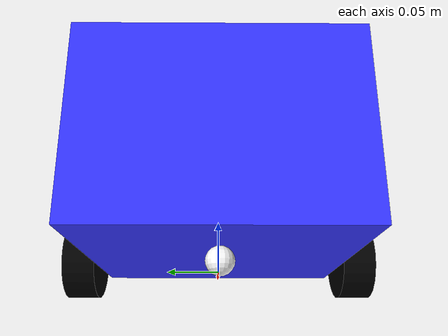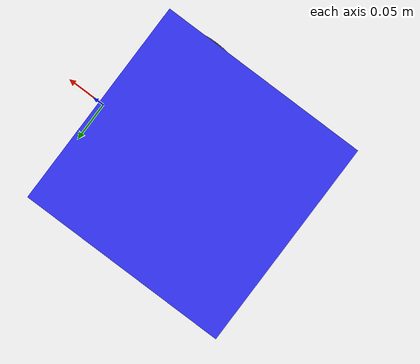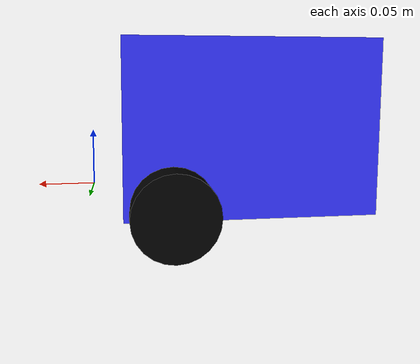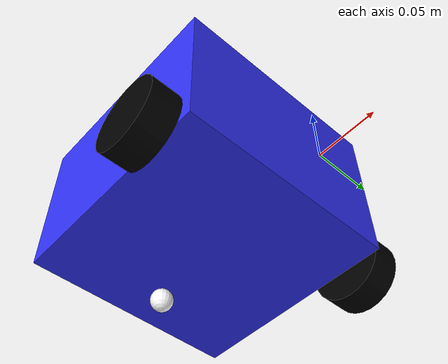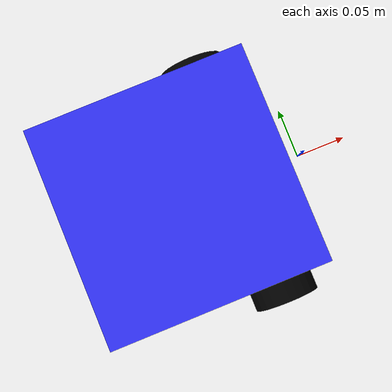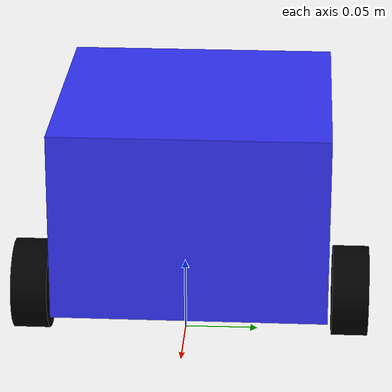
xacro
<?xml version="1.0"?>
<robot xmlns:xacro="http://www.ros.org/wiki/xacro" name="amr_bot">

  <!-- Properties -->
  <xacro:property name="chassis_length" value="0.198"/>
  <xacro:property name="chassis_width" value="0.198"/>
  <xacro:property name="chassis_height" value="0.138"/>
  <xacro:property name="chassis_mass" value="1.0"/>
  <xacro:property name="wheel_radius" value="0.0325"/>
  <xacro:property name="wheel_thickness" value="0.026"/>
  <xacro:property name="wheel_mass" value="0.05"/>
  <xacro:property name="wheel_offset_x" value="0.226"/>
  <xacro:property name="wheel_offset_y" value="0.115"/>
  <xacro:property name="wheel_offset_z" value="0.01"/>
  <xacro:property name="caster_wheel_radius" value="0.01"/>
  <xacro:property name="caster_wheel_mass" value="0.01"/>
  <xacro:property name="caster_wheel_offset_x" value="0.045"/>
  <xacro:property name="caster_wheel_offset_z" value="${wheel_offset_z - wheel_radius + caster_wheel_radius}"/>

  <!-- Materials -->
  <material name="white"><color rgba="1 1 1 1"/></material>
  <material name="orange"><color rgba="1 0.3 0.1 1"/></material>
  <material name="blue"><color rgba="0.2 0.2 1 1"/></material>
  <material name="black"><color rgba="0 0 0 1"/></material>
  <material name="red"><color rgba="1 0 0 1"/></material>

  <!-- Base Link -->
  <link name="base_link"/>

  <!-- Base Footprint -->
  <joint name="base_footprint_joint" type="fixed">
    <parent link="base_link"/>
    <child link="base_footprint"/>
    <origin xyz="0 0 0" rpy="0 0 0"/>
  </joint>
  <link name="base_footprint"/>

  <!-- Chassis -->
  <joint name="chassis_joint" type="fixed">
    <parent link="base_link"/>
    <child link="chassis"/>
    <origin xyz="${-wheel_offset_x} 0 ${-wheel_offset_z}"/>
  </joint>

  <link name="chassis">
    <visual>
      <origin xyz="${chassis_length/2} 0 ${chassis_height/2}"/>
      <geometry>
        <box size="${chassis_length} ${chassis_width} ${chassis_height}"/>
      </geometry>
      <material name="blue"/>
    </visual>
    <collision>
      <origin xyz="${chassis_length/2} 0 ${chassis_height/2}"/>
      <geometry>
        <box size="${chassis_length} ${chassis_width} ${chassis_height}"/>
      </geometry>
    </collision>
    <inertial>
      <origin xyz="${chassis_length/2} 0 ${chassis_height/2}" rpy="0 0 0"/>
      <mass value="${chassis_mass}"/>
      <inertia ixx="0.01" iyy="0.01" izz="0.01" ixy="0.0" ixz="0.0" iyz="0.0"/>
    </inertial>
  </link>

  <gazebo reference="chassis">
    <material>Gazebo/Blue</material>
  </gazebo>

  <!-- Left Wheel -->
  <joint name="left_wheel_joint" type="continuous">
    <parent link="base_link"/>
    <child link="left_wheel"/>
    <origin xyz="-0.0650 ${wheel_offset_y} 0" rpy="-${pi/2} 0 0" />
    <axis xyz="0 0 1"/>
  </joint>

  <link name="left_wheel">
    <visual>
      <geometry>
        <cylinder radius="${wheel_radius}" length="${wheel_thickness}"/>
      </geometry>
      <material name="black"/>
    </visual>
    <collision>
      <geometry>
        <sphere radius="${wheel_radius}"/>
      </geometry>
    </collision>
    <inertial>
      <origin xyz="0 0 0.05" rpy="0 0 0"/>
      <mass value="${wheel_mass}"/>
      <inertia ixx="0.001" iyy="0.001" izz="0.001" ixy="0.0" ixz="0.0" iyz="0.0"/>
    </inertial>
  </link>

  <gazebo reference="left_wheel">
    <material>Gazebo/Black</material>
  </gazebo>

  <!-- Right Wheel -->
  <joint name="right_wheel_joint" type="continuous">
    <parent link="base_link"/>
    <child link="right_wheel"/>
    <origin xyz="-0.0650 ${-wheel_offset_y} 0" rpy="${pi/2} 0 0" />
    <axis xyz="0 0 -1"/>
  </joint>

  <link name="right_wheel">
    <visual>
      <geometry>
        <cylinder radius="${wheel_radius}" length="${wheel_thickness}"/>
      </geometry>
      <material name="black"/>
    </visual>
    <collision>
      <geometry>
        <sphere radius="${wheel_radius}"/>
      </geometry>
    </collision>
    <inertial>
      <origin xyz="0 0 0" rpy="0 0 0"/>
      <mass value="${wheel_mass}"/>
      <inertia ixx="0.001" iyy="0.001" izz="0.001" ixy="0.0" ixz="0.0" iyz="0.0"/>
    </inertial>
  </link>

  <gazebo reference="right_wheel">
    <material>Gazebo/Black</material>
  </gazebo>

  <!-- Caster Wheel -->
  <joint name="caster_wheel_joint" type="fixed">
    <parent link="chassis"/>
    <child link="caster_wheel"/>
    <origin xyz="${caster_wheel_offset_x} 0 ${caster_wheel_offset_z}"/>
  </joint>

  <link name="caster_wheel">
    <visual>
      <geometry>
        <sphere radius="${caster_wheel_radius}"/>
      </geometry>
      <material name="white"/>
    </visual>
    <collision>
      <geometry>
        <sphere radius="${caster_wheel_radius}"/>
      </geometry>
    </collision>
    <inertial>
      <origin xyz="0 0 0.03" rpy="0 0 0"/>
      <mass value="${caster_wheel_mass}"/>
      <inertia ixx="0.0001" iyy="0.0001" izz="0.0001" ixy="0.0" ixz="0.0" iyz="0.0"/>
    </inertial>
  </link>

  <gazebo reference="caster_wheel">
    <material>Gazebo/White</material>
    <mu1 value="0.001"/>
    <mu2 value="0.001"/>
  </gazebo>

</robot>
